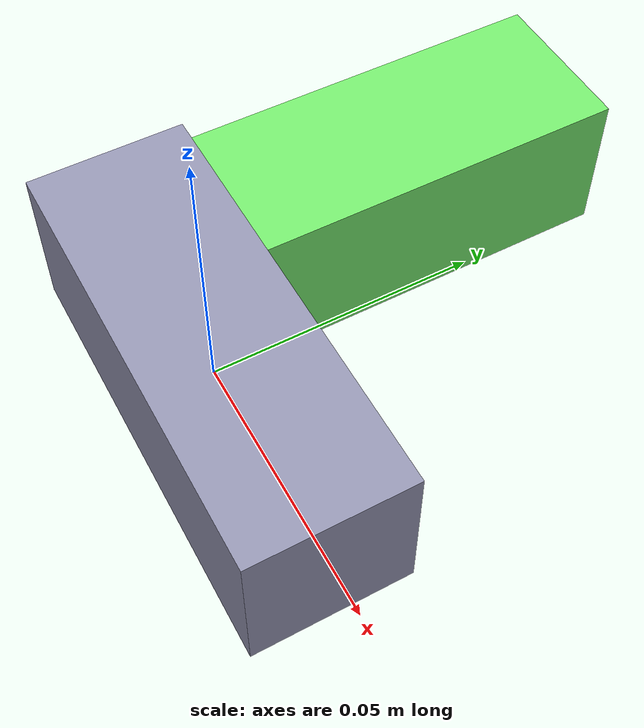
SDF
<sdf version="1.4"><world name="default"><model name="object0"><link name="link1"><pose>0 0 0 0 0 0</pose><inertial><pose>0 0 0 0 0 0</pose><mass>0.045373336051213485</mass><inertia><ixx>6.806000407682022e-06</ixx><ixy>0</ixy><iyy>3.0098211915258486e-05</iyy><ixz>0</ixz><iyz>0</iyz><izz>3.0098211915258486e-05</izz></inertia></inertial><visual name="link1_visual"><pose>0 0  0 0 0 0</pose><geometry><box><size>0.08402469639113608 0.03 0.03</size></box></geometry><material><diffuse>0.5783109668839652 0.5817626080187817 0.6926562879950335 1</diffuse></material></visual><collision><pose>0 0  0 0 0 0</pose><geometry><box><size>0.08402469639113608 0.03 0.03</size></box></geometry></collision></link><link name="link2"><pose>-0.02353768782047535 0.036568017571652206 0 0 0 0</pose><inertial><pose>0 0 0 0 0 0</pose><mass>0.05273111083990289</mass><inertia><ixx>4.5597305993307255e-05</ixx><ixy>0</ixy><iyy>7.650405331022577e-06</iyy><ixz>0</ixz><iyz>0</iyz><izz>4.585656728827011e-05</izz></inertia></inertial><visual name="link2_visual"><pose>0 0  0 0 0 0</pose><geometry><box><size>0.03 0.09765020525907944 0.028999999999999998</size></box></geometry><material><diffuse>0.4586554129744086 0.9084874070037272 0.42525439957088884 1</diffuse></material></visual><collision><pose>0 0  0 0 0 0</pose><geometry><box><size>0.03 0.09765020525907944 0.028999999999999998</size></box></geometry></collision></link><joint name="link_joint_0" type="fixed"><parent>link1</parent><child>link2</child><pose>0 0 0 0 0 0</pose><axis><xyz>0 0 1</xyz></axis></joint></model></world></sdf>
